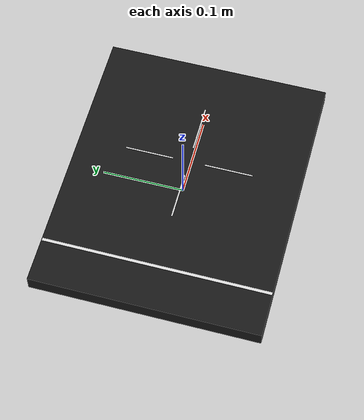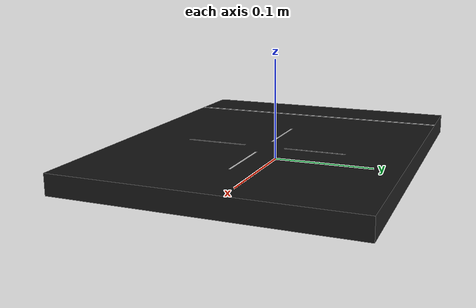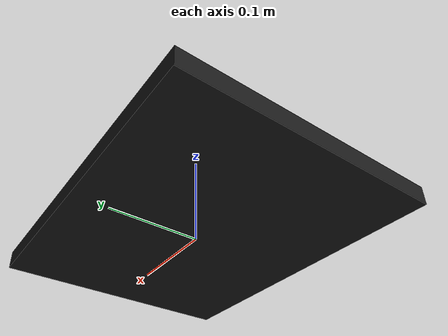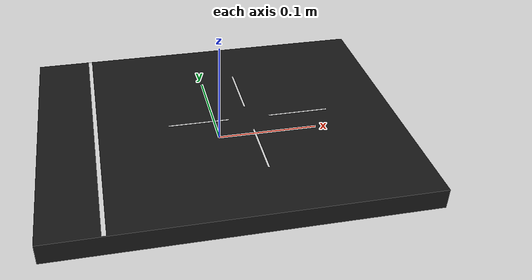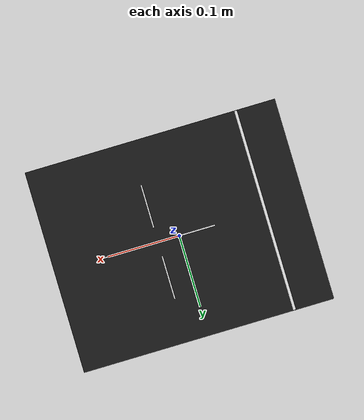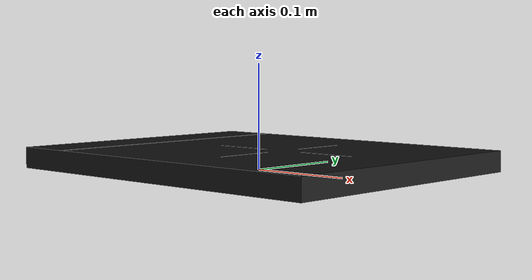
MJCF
<mujoco model="stove">
  <compiler angle="radian" meshdir="assets" autolimits="true"/>

  <option cone="elliptic" impratio="10"/>

  <default>
    <default class="stove">
      <default class="visual">
        <geom group="2" contype="0" conaffinity="0"/>
      </default>
      <default class="collision">
        <geom group="3" condim="3" margin="0.001"/>
      </default>
    </default>
  </default>

  <worldbody>
    <body name="stove_body" childclass="stove">
      <site name="stove_site" pos="0.03 0 0.01"/>
      <geom type="box" class="visual" pos="0 0 0.01" size="0.175 0.14 0.01" rgba="0.1 0.1 0.1 1"/>
      <geom type="box" class="visual" pos="-0.12 0 0.0101" size="0.002 0.1395 0.01" rgba="0.9 0.9 0.9 1"/>
      <geom type="box" class="collision" pos="0 0 0.01" size="0.175 0.14 0.01"/>

      <geom type="box" class="visual" pos="0.03 0.05 0.0101" size="0.001 0.03 0.01" rgba="0.9 0.9 0.9 1"/>
      <geom type="box" class="visual" pos="0.03 -0.05 0.0101" size="0.001 0.03 0.01" rgba="0.9 0.9 0.9 1"/>
      <geom type="box" class="visual" pos="0.08 0 0.0101" size="0.03 0.001 0.01" rgba="0.9 0.9 0.9 1"/>
      <geom type="box" class="visual" pos="-0.02 0 0.0101" size="0.03 0.001 0.01" rgba="0.9 0.9 0.9 1"/>

    </body>
  </worldbody>

</mujoco>
